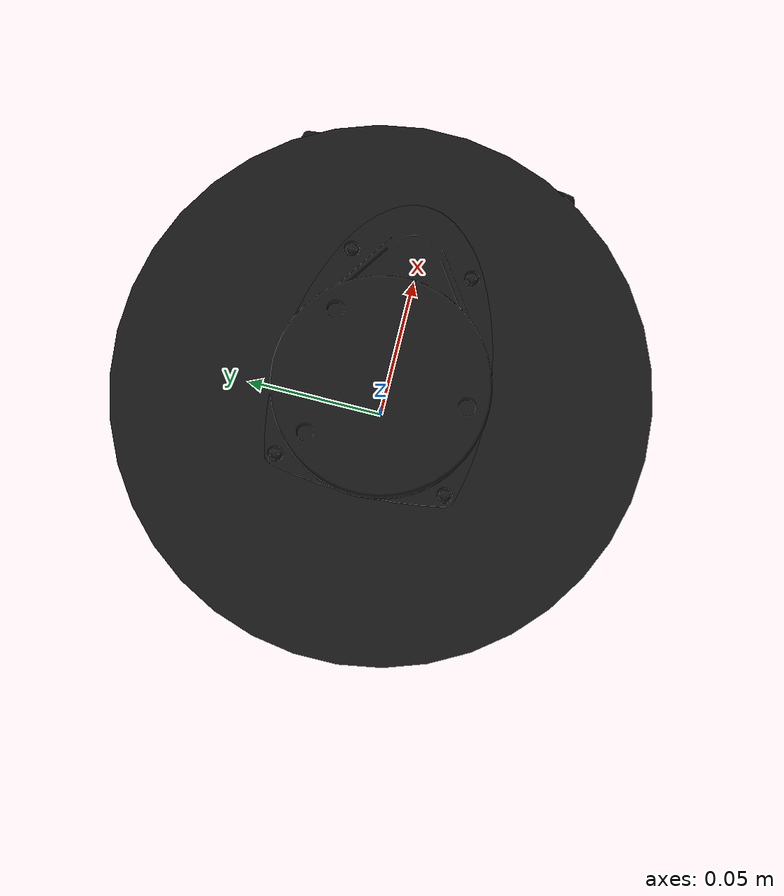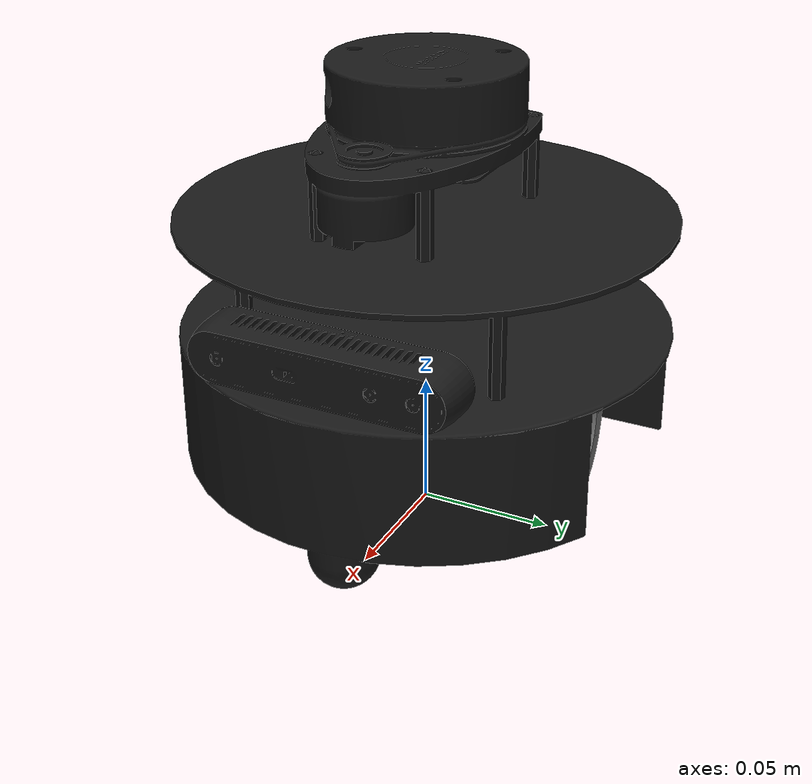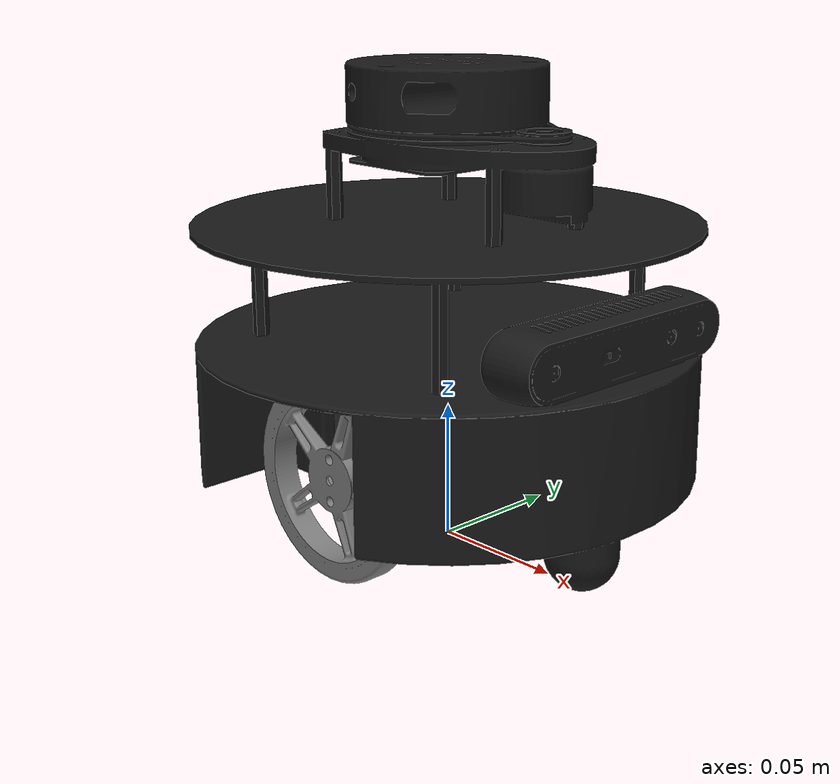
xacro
<?xml version="1.0"?>
<robot name="my_robot" xmlns:xacro="http://www.ros.org/wiki/xacro">

    <xacro:include filename="common_properties.xacro" />
    <xacro:include filename="mobile_robot_base.xacro" />
    <xacro:include filename="mobile_robot_gazebo.xacro" />
    <xacro:include filename="lidar.xacro" />
    <xacro:include filename="camera.xacro" />

</robot>

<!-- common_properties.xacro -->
<robot xmlns:xacro="http://www.ros.org/wiki/xacro">

    <xacro:property name="kgmm2_to_kgm2" value="1e-6" />

    <material name="red">
        <color rgba="0.65 0.0 0.0 1.0" />
    </material>

    <material name="blue">
        <color rgba="0.0 0.0 0.65 1.0" />
    </material>

    <material name="black">
        <color rgba ="0.1 0.1 0.1 1.0" />
    </material>

    <material name="silver">
        <color rgba="0.75 0.75 0.75 1.0" />
    </material>

    <material name="gray">
        <color rgba="0.5 0.5 0.5 1.0" />
    </material>

    <xacro:macro name="base_inertia" params="xyz rpy">
        <inertial>
            <origin xyz="${xyz}" rpy="${rpy}" />
            <mass value="0.324" />
            <inertia ixx="${kgmm2_to_kgm2*1321.81}" ixy="${kgmm2_to_kgm2*(-1.06e-4)}"
                    ixz="0" iyy="${kgmm2_to_kgm2*963.45}"
                    iyz="0" izz="${kgmm2_to_kgm2*1640.97}" />
        </inertial>
    </xacro:macro>

    <xacro:macro name="motor_inertia" params="xyz rpy">
        <inertial>
            <origin xyz="${xyz}" rpy="${rpy}" />
            <mass value="0.016" />
            <inertia ixx="${kgmm2_to_kgm2*0.67}" ixy="${kgmm2_to_kgm2*(-1.41e-7)}"
                    ixz="${kgmm2_to_kgm2*(-0.022)}" iyy="${kgmm2_to_kgm2*1.43}"
                    iyz="${kgmm2_to_kgm2*(-1.12e-4)}" izz="${kgmm2_to_kgm2*1.651}" />
        </inertial>
    </xacro:macro>

    <xacro:macro name="wheel_inertia" params="xyz rpy">
        <inertial>
            <origin xyz="${xyz}" rpy="${rpy}" />
            <mass value="0.023" />
            <inertia ixx="${kgmm2_to_kgm2*19.31}" ixy="${kgmm2_to_kgm2*(-2.91e-8)}"
                    ixz="${kgmm2_to_kgm2*(-4.18e-8)}" iyy="${kgmm2_to_kgm2*9.80}"
                    iyz="${kgmm2_to_kgm2*(4.49e-7)}" izz="${kgmm2_to_kgm2*9.81}" />
        </inertial>
    </xacro:macro>

    <xacro:macro name="camera_inertia" params="xyz rpy">
        <inertial>
            <origin xyz="${xyz}" rpy="${rpy}" />
            <mass value="0.04" />
            <inertia ixx="${kgmm2_to_kgm2*3.04}" ixy="${kgmm2_to_kgm2*0.004}"
                    ixz="${kgmm2_to_kgm2*(1.31e-4)}" iyy="${kgmm2_to_kgm2*32.45}"
                    iyz="${kgmm2_to_kgm2*(-0.017)}" izz="${kgmm2_to_kgm2*32.46}" />
        </inertial>
    </xacro:macro>

    <xacro:macro name="lidar_inertia" params="xyz rpy">
        <inertial>
            <origin xyz="${xyz}" rpy="${rpy}" />
            <mass value="0.152" />
            <inertia ixx="${kgmm2_to_kgm2*98.88}" ixy="${kgmm2_to_kgm2*0.453}"
                    ixz="${kgmm2_to_kgm2*(-0.779)}" iyy="${kgmm2_to_kgm2*62.04}"
                    iyz="${kgmm2_to_kgm2*(-13.95)}" izz="${kgmm2_to_kgm2*123.1}" />
        </inertial>
    </xacro:macro>

</robot>

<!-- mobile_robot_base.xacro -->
<robot xmlns:xacro="http://www.ros.org/wiki/xacro">

    <xacro:property name="scale_num" value="1.0" />
    <xacro:property name="scale" value="${scale_num} ${scale_num} ${scale_num}" />

    <link name="base_footprint" />

    <link name="base_link">
        <visual>
            <geometry>
                <mesh filename="package://robot_description/meshes/base_link.dae"
                    scale="${scale}"/>
            </geometry>
            <origin xyz="0.0 0.0 0.0" rpy="0.0 0.0 ${-pi/2}"/>
            <material name="black"/>
        </visual>
        <xacro:base_inertia xyz="0.0 0.0 0.0" rpy="0.0 0.0 0.0"/>
        <collision>
            <geometry>
                <mesh filename="package://robot_description/meshes/base_link.dae"
                    scale="${scale}"/>
            </geometry>
            <origin xyz="0.0 0.0 0.0" rpy="0.0 0.0 ${-pi/2}"/>
        </collision>
    </link>

    <joint name="base_joint" type="fixed">
        <parent link="base_footprint"/>
        <child link="base_link"/>
        <origin xyz="0.0 0.0 ${scale_num * 0.028}" rpy="0.0 0.0 0.0"/>
    </joint>

    <xacro:macro name="motor_link" params="prefix">
        <link name="${prefix}_motor_link">
            <visual>
                <geometry>
                    <mesh filename="package://robot_description/meshes/motor.dae"
                        scale="${scale}"/>
                </geometry>
                <origin xyz="0.0 0.0 0.0" rpy="0.0 0.0 0.0"/>
                <material name="silver"/>
            </visual>
            <xacro:motor_inertia xyz="0.0 0.0 0.0" rpy="0.0 0.0 0.0"/>
            <collision>
                <geometry>
                    <mesh filename="package://robot_description/meshes/motor.dae"
                        scale="${scale}"/>
                </geometry>
                <origin xyz="0.0 0.0 0.0" rpy=" 0.0  0.0 0.0"/>
            </collision>
        </link>
    </xacro:macro>

    <xacro:motor_link prefix="left" />
    <xacro:motor_link prefix="right" />

    <joint name="base_right_motor_joint" type="fixed">
        <parent link="base_link"/>
        <child link="right_motor_link"/>
        <origin xyz=" 0.0 ${-scale_num * 0.03348} ${scale_num*0.008}" rpy="0.0 0.0 ${-pi/2}"/>
    </joint>

        <joint name="base_left_motor_joint" type="fixed">
        <parent link="base_link"/>
        <child link="left_motor_link"/>
        <origin xyz=" 0.0 ${scale_num * 0.03348} ${scale_num*0.008}" rpy=" 0.0  0.0 ${pi/2}"/>
    </joint>

    <xacro:macro name="wheel_link" params="prefix rotation">
        <link name="${prefix}_wheel_link">
            <visual>
                <geometry>
                    <mesh filename="package://robot_description/meshes/wheel.dae"
                        scale="${scale}"/>
                </geometry>
                <origin xyz="0.0 0.0 0.0" rpy=" 0.0  0.0 ${rotation}"/>
                <material name="gray"/>
            </visual>
            <xacro:motor_inertia xyz="0.0 0.0 0.0" rpy="0.0 0.0 0.0"/>
            <collision>
                <geometry>
                    <mesh filename="package://robot_description/meshes/wheel.dae"
                        scale="${scale}"/>
                </geometry>
                <origin xyz="0.0 0.0 0.0" rpy="0 0.0 ${rotation}"/>
            </collision>
        </link>
    </xacro:macro>

    <xacro:wheel_link prefix="right" rotation="${pi/2}"/>
    <xacro:wheel_link prefix="left" rotation="${-pi/2}"/>

    <joint name="left_motor_wheel_joint" type="continuous">
        <parent link="left_motor_link"/>
        <child link="left_wheel_link"/>
        <origin xyz="${scale_num * 0.01992} 0.0 0.0" rpy="0.0 0.0 ${pi/2}"/>
        <axis xyz=" 0.0 -1 0.0"/>
    </joint>

    <joint name="right_motor_wheel_joint" type="continuous">
        <parent link="right_motor_link"/>
        <child link="right_wheel_link"/>
        <origin xyz="${scale_num * 0.01992} 0.0 0.0" rpy="0 0 ${-pi/2}"/>
        <axis xyz="0.0 -1.0 0.0"/>
    </joint>

</robot>

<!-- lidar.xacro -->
<robot xmlns:xacro="http://www.ros.org/wiki/xacro">

    <link name="lidar_link">
        <visual>
            <geometry>
                <mesh filename="package://robot_description/meshes/rplidar.dae" scale="${scale}"/>
            </geometry>
            <origin xyz="0.0 0.0 0.0" rpy="0.0 0.0 ${pi}"/>
            <material name="black"/>
        </visual>
        <xacro:lidar_inertia xyz="0.0 0.0 0.0" rpy="0.0 0.0 0.0"/>
        <collision>
            <geometry>
                <mesh filename="package://robot_description/meshes/rplidar.dae" scale="${scale}"/>
            </geometry>
            <origin xyz="0.0 0.0 0.0" rpy="0.0 0.0 0.0"/>
        </collision>
    </link>

    <joint name="base_lidar_joint" type="fixed">
        <parent link="base_link"/>
        <child link="lidar_link"/>
        <origin xyz="0.0 0.0 ${scale_num * 0.1116}" rpy="0.0 0.0 ${-pi/2}"/>
    </joint>

    <link name="laser_frame" />

    <joint name="lidar_laser_joint" type="fixed">
        <parent link="lidar_link"/>
        <child link="laser_frame"/>
        <origin xyz="0.0 0.0 ${scale_num * 0.025101}" rpy="0.0 0.0 0.0"/>
    </joint>

    <gazebo reference="laser_frame">
        <sensor name="laser" type="ray">
            <pose> 0 0 0 0 0 0 </pose>
            <visualize>true</visualize>
            <update_rate>10</update_rate>
            <ray>
                <scan>
                    <horizontal>
                        <samples>720</samples>
                        <min_angle>-3.14</min_angle>
                        <max_angle>3.14</max_angle>
                    </horizontal>
                </scan>
                <range>
                    <min>0.1</min>
                    <max>12</max>
                </range>
            </ray>
            <plugin name="laser_controller" filename="libgazebo_ros_ray_sensor.so">
                <ros>
                    <argument>~/out:=scan</argument>
                </ros>
                <output_type>sensor_msgs/LaserScan</output_type>
                <frame_name>laser_frame</frame_name>
            </plugin>
        </sensor>
    </gazebo>

</robot>

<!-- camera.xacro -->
<robot xmlns:xacro="http://www.ros.org/wiki/xacro">

    <link name="camera_link">
        <visual>
            <geometry>
                <mesh filename="package://robot_description/meshes/camera.dae" scale="${scale}"/>
            </geometry>
            <origin xyz="${-scale_num * 0.012} 0.0 ${-scale_num * 0.0116}" rpy="0.0 0.0 ${pi/2}"/>
            <material name="black"/>
        </visual>
        <xacro:camera_inertia xyz="0.0 0.0 0.0" rpy="0.0 0.0 0.0"/>
        <collision>
            <geometry>
                <mesh filename="package://robot_description/meshes/camera.dae" scale="${scale}"/>
            </geometry>
            <origin xyz="${-scale_num * 0.012} 0.0 ${-scale_num * 0.0116}" rpy="0.0 0.0 ${pi/2}"/>
        </collision>
    </link>

    <joint name="base_camera_joint" type="fixed">
        <parent link="base_link"/>
        <child link="camera_link"/>
        <origin xyz="${scale_num * 0.087} 0.0 ${scale_num * 0.0606}" rpy="0.0 0.0 0.0"/>
    </joint>

    <link name="camera_link_optical">
    </link>

    <joint name="camera_optical_joint" type="fixed">
        <origin xyz="0 0 0" rpy="${-pi/2} 0 ${-pi/2}"/>
        <parent link="camera_link"/>
        <child link="camera_link_optical"/>
    </joint>

    <gazebo reference="camera_link">
        <material>Gazebo/Gray</material>
        <sensor name="camera_sensor" type="camera">
            <pose>0 0 0 0 0 0</pose>
            <visualize>true</visualize>
            <update_rate>10.0</update_rate>
            <camera>
                <horizontal_fov>${60*pi/180}</horizontal_fov>
                <image>
                    <width>640</width>
                    <height>480</height>
                </image>
                <clip>
                    <near>0.1</near>
                    <far>300</far>
                </clip>
            </camera>
            <plugin name="camera_controller" filename="libgazebo_ros_camera.so">
                <frame_name>camera_link_optical</frame_name>
            </plugin>
        </sensor>
    </gazebo>

</robot>
